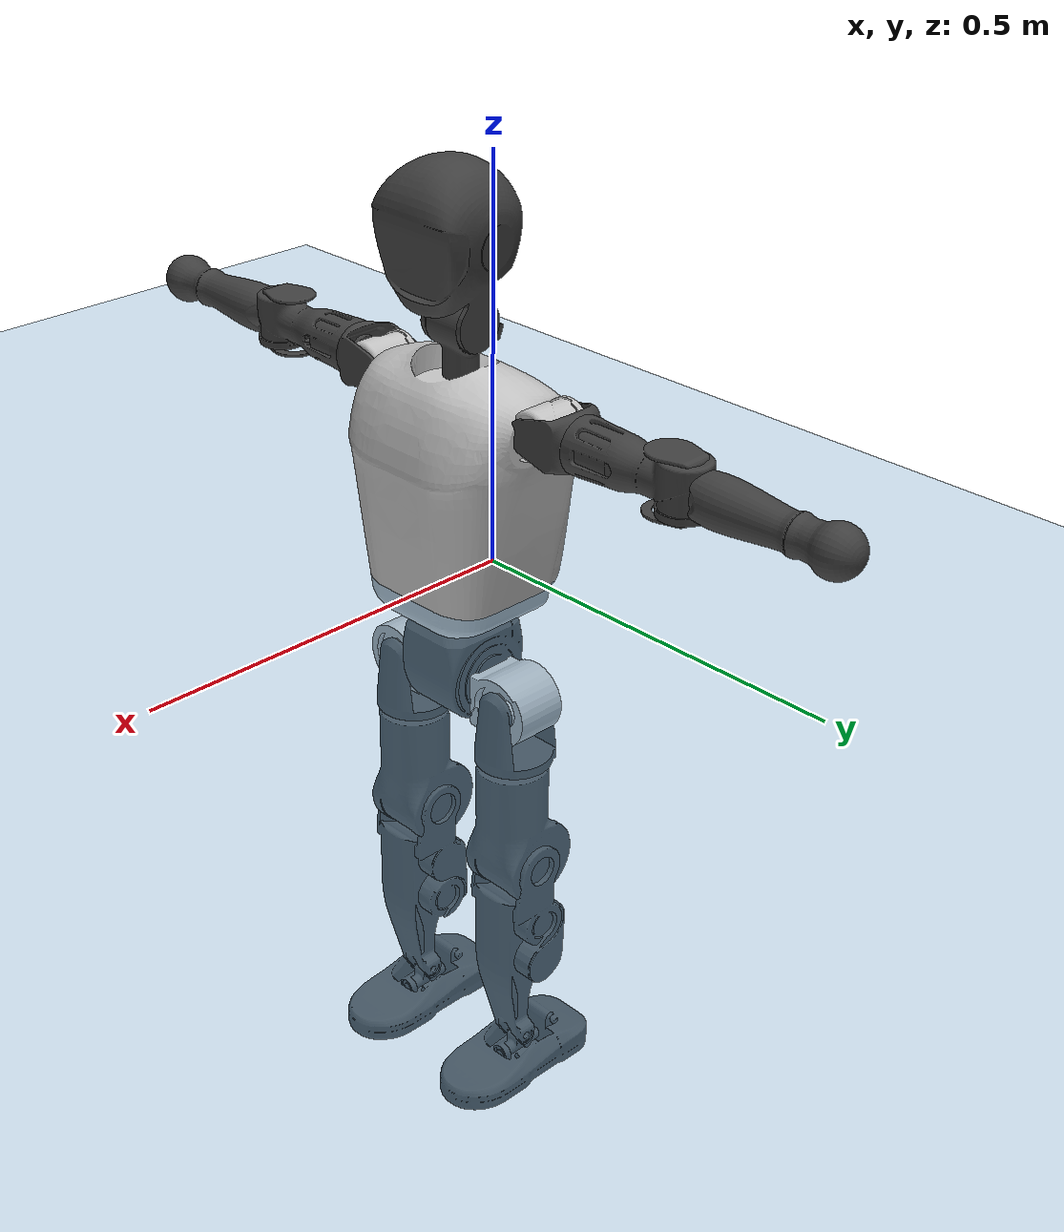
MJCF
<mujoco model="T1">
  <compiler angle="radian" assetdir="assets" balanceinertia="true" inertiafromgeom="false"/>

  <option timestep="0.005" density="1.2" viscosity="2e-05"/>

  <size nkey="1"/>

  <visual>
    <quality shadowsize="8192"/>
    <map shadowclip="0.5"/>
  </visual>

  <default>
    <default class="/">
      <joint armature="0.01" damping="0.01" frictionloss="0.1"/>
      <geom contype="0" conaffinity="0" group="1" solref="-1000 -80"/>
      <site size="0.01 0.005 0.005" group="5"/>
      <general forcelimited="true" biastype="affine" gainprm="25" biasprm="0 -25 -0.6"/>
      <default class="t1">
        <geom rgba="0.25 0.25 0.25 1"/>
        <default class="visual">
          <geom type="mesh" group="2"/>
        </default>
        <default class="collision">
          <geom group="3"/>
        </default>
        <default class="foot">
          <geom size="0.1115 0.05 0.015" type="box" condim="6" group="4" priority="1" solimp="0.015 1 0.015"/>
        </default>
        <default class="reward_collision_sphere">
          <geom group="5" rgba="1 0 0 1"/>
        </default>
      </default>
    </default>
  </default>

  <asset>
    <texture type="skybox" colorspace="auto" name="//unnamed_texture_0" builtin="gradient" rgb1="0.95 0.95 0.95" rgb2="0.95 0.95 0.95" width="100" height="600"/>
    <texture type="2d" colorspace="auto" name="texplane" builtin="checker" rgb1="0.345 0.575 0.748" rgb2="0.345 0.575 0.748" markrgb="1 1 1" width="512" height="512"/>
    <material name="MatPlane" class="/" texture="texplane" texuniform="true" texrepeat="2 2" specular="0.9"/>
    <mesh name="Trunk" class="/" file="Trunk.stl"/>
    <mesh name="H1" class="/" file="H1.stl"/>
    <mesh name="H2" class="/" file="H2.stl"/>
    <mesh name="AL1" class="/" file="AL1.stl"/>
    <mesh name="AL2" class="/" file="AL2.stl"/>
    <mesh name="AL3" class="/" file="AL3.stl"/>
    <mesh name="left_hand_link" class="/" file="left_hand_link.stl"/>
    <mesh name="AR1" class="/" file="AR1.stl"/>
    <mesh name="AR2" class="/" file="AR2.stl"/>
    <mesh name="AR3" class="/" file="AR3.stl"/>
    <mesh name="right_hand_link" class="/" file="right_hand_link.stl"/>
    <mesh name="Waist" class="/" file="Waist.stl"/>
    <mesh name="Hip_Pitch_Left" class="/" file="Hip_Pitch_Left.stl"/>
    <mesh name="Hip_Roll_Left" class="/" file="Hip_Roll_Left.stl"/>
    <mesh name="Hip_Yaw_Left" class="/" file="Hip_Yaw_Left.stl"/>
    <mesh name="Shank_Left" class="/" file="Shank_Left.stl"/>
    <mesh name="Ankle_Cross_Left" class="/" file="Ankle_Cross_Left.stl"/>
    <mesh name="left_foot_link" class="/" file="left_foot_link.stl"/>
    <mesh name="Hip_Pitch_Right" class="/" file="Hip_Pitch_Right.stl"/>
    <mesh name="Hip_Roll_Right" class="/" file="Hip_Roll_Right.stl"/>
    <mesh name="Hip_Yaw_Right" class="/" file="Hip_Yaw_Right.stl"/>
    <mesh name="Shank_Right" class="/" file="Shank_Right.stl"/>
    <mesh name="Ankle_Cross_Right" class="/" file="Ankle_Cross_Right.stl"/>
    <mesh name="right_foot_link" class="/" file="right_foot_link.stl"/>
  </asset>

  <worldbody>
    <geom name="floor" class="/" size="100 100 0.125" type="plane" group="0" material="MatPlane"/>
    <light name="toplight_shadow" class="/" pos="0 0 5" dir="0.0990148 0.0990148 -0.990148" type="directional" ambient="0.04 0.04 0.04" diffuse="0.55 0.55 0.55" specular="0.12 0.12 0.12"/>
    <light name="toplight_fill" class="/" pos="0 0 5" dir="0.0990148 0.0990148 -0.990148" type="directional" castshadow="false" ambient="0.04 0.04 0.04" diffuse="0.3 0.3 0.3" specular="0.08 0.08 0.08"/>
    <body name="trunk" childclass="t1" pos="0.000982747 -0.000385258 -0.000848386" quat="1 0.000245074 0.000141556 0.000214133">
      <inertial pos="0.0429453 0.00034203 0.109315" quat="0.999942 0.000118347 -0.0107978 -0.000183233" mass="8.29357" diaginertia="0.0280482 0.0359515 0.069675"/>
      <joint name="//unnamed_joint_0" type="free" armature="0" damping="0" frictionloss="0"/>
      <geom name="//unnamed_geom_1" class="visual" rgba="0.76 0.76 0.76 1" mesh="Trunk"/>
      <geom name="//unnamed_geom_2" class="collision" size="0.0674368 0.0899157 0.134874" pos="0.0474232 0 0.125874" type="box"/>
      <geom name="//unnamed_geom_3" class="reward_collision_sphere" size="0.103403" pos="0.0474232 0 0.104895"/>
      <geom name="//unnamed_geom_4" class="reward_collision_sphere" size="0.0134874" pos="0.0474232 0.0729412 0"/>
      <geom name="//unnamed_geom_5" class="reward_collision_sphere" size="0.0134874" pos="0.0474232 -0.0729412 0"/>
      <geom name="//unnamed_geom_6" class="reward_collision_sphere" size="0.0134874" pos="0.0474232 0.0918201 0.188811"/>
      <geom name="//unnamed_geom_7" class="reward_collision_sphere" size="0.0134874" pos="0.0474232 -0.0918201 0.188811"/>
      <site name="imu" pos="0.00253861 -0.00519519 -0.000790465" size="0.00899157"/>
      <camera name="track" pos="0 -1.71626 0" quat="0.707107 0.707107 0 0" mode="trackcom"/>
      <camera name="ego_camera" pos="0.0964272 0 0.44056" quat="-0.5 -0.5 0.5 0.5"/>
      <body name="H1" pos="0.048538 -0.000745808 0.254034" quat="1 -0.00045715 -0.000125023 2.42303e-05">
        <inertial pos="-0.00205632 -0.00154276 0.0595552" quat="0.768073 -0.0103866 0.00788941 0.640229" mass="0.321476" diaginertia="7.47654e-05 0.000103645 0.000191901"/>
        <joint name="AAHead_yaw" pos="0 0 0" axis="-0.00505624 -0.0016739 0.999986" stiffness="0.00189107" range="-1.56138 1.57883" armature="0.00864249" damping="0.00806884" frictionloss="0.0905752"/>
        <geom name="//unnamed_geom_8" class="visual" mesh="H1"/>
        <body name="H2" pos="-8.01717e-05 -0.000545252 0.0641816" quat="1 -0.000155893 -0.000182956 -0.000151585">
          <inertial pos="0.00559764 -0.000945573 0.103297" quat="0.988394 0.106563 -0.0750363 -0.0780409" mass="0.457789" diaginertia="0.000626413 0.000872301 0.00219046"/>
          <joint name="Head_pitch" pos="0 0 0" axis="0.0016857 -0.999998 -0.00103516" range="-1.22927 0.332633" armature="0.00910104" damping="0.00439731" frictionloss="0.0941024"/>
          <geom name="//unnamed_geom_9" class="visual" mesh="H2"/>
          <geom name="//unnamed_geom_10" class="collision" size="0.0719325" pos="0.00790387 0 0.115385"/>
          <geom name="//unnamed_geom_11" class="reward_collision_sphere" size="0.0809241" pos="0.0158077 0 0.104895"/>
        </body>
      </body>
      <body name="AL1" pos="0.0471422 0.0925317 0.23001" quat="1 0.000102354 0.000565761 -0.000106398">
        <inertial pos="-0.000172928 0.0380371 -0.00166716" quat="0.504306 0.490313 -0.507849 0.497351" mass="0.395347" diaginertia="0.000433965 0.000614142 0.000379485"/>
        <joint name="Left_Shoulder_Pitch" pos="0 0 0" axis="0.00581237 0.99998 0.00267645" range="-3.30592 1.23919" armature="0.00914176" damping="0.0053006" frictionloss="0.092172"/>
        <geom name="//unnamed_geom_12" class="visual" rgba="0.76 0.76 0.76 1" mesh="AL1"/>
        <body name="AL2" pos="6.31463e-05 0.0408925 -0.000252528" quat="1 -0.00087503 -0.000296604 -0.000175297">
          <inertial pos="0.00343175 0.0305594 -0.000404129" quat="0.487872 0.511672 -0.488075 0.511816" mass="0.115909" diaginertia="0.000124359 0.000162292 0.000223386"/>
          <joint name="Left_Shoulder_Roll" pos="0 0 0" axis="-0.999978 0.000410573 0.00663689" range="-1.54907 1.74882" armature="0.00945433" damping="0" frictionloss="0.0948788"/>
          <geom name="//unnamed_geom_13" class="visual" mesh="AL2"/>
          <body name="AL3" pos="0.000843285 0.0541687 -0.00034114" quat="1 0.000404756 -0.00032573 0.000222635">
            <inertial pos="-0.00049255 0.0725978 0.000714061" quat="0.706805 0.707399 0.00261084 -0.00270992" mass="0.768315" diaginertia="0.0039975 0.00607898 0.000779928"/>
            <joint name="Left_Elbow_Pitch" pos="0 0 0" axis="-0.000729984 -0.999999 -0.00105893" range="-2.23468 2.23561" armature="0.00958297" damping="0.000120957" frictionloss="0.090404"/>
            <geom name="//unnamed_geom_14" class="visual" mesh="AL3"/>
            <geom name="//unnamed_geom_15" class="collision" size="0.0269747 0.0674368" pos="0 0.0429066 0" quat="0.707105 0.707108 0 0" type="cylinder"/>
            <geom name="//unnamed_geom_16" class="reward_collision_sphere" size="0.0323696"/>
            <body name="left_hand_link" pos="-0.000276102 0.126285 -0.000603924" quat="1 -0.000166075 -0.000110098 3.34344e-05">
              <inertial pos="2.39067e-05 0.0936576 2.96539e-05" quat="0.708852 0.705353 -0.00229118 -0.000435229" mass="0.235754" diaginertia="0.00248908 0.0037678 0.00027304"/>
              <joint name="Left_Elbow_Yaw" pos="0 0 0" axis="2.59084e-05 0.000517101 1" range="-2.44451 -0.00530501" armature="0.0093007" damping="0.0106469" frictionloss="0.0866977"/>
              <geom name="//unnamed_geom_17" class="visual" mesh="left_hand_link"/>
              <geom name="//unnamed_geom_18" class="collision" size="0.0269747 0.0786762" pos="0 0.111557 0" quat="0.707105 0.707108 0 0" type="cylinder"/>
              <geom name="//unnamed_geom_19" class="reward_collision_sphere" size="0.0449578"/>
              <geom name="//unnamed_geom_20" class="reward_collision_sphere" size="0.0314705" pos="0 0.0943945 0"/>
              <geom name="//unnamed_geom_21" class="reward_collision_sphere" size="0.0314705" pos="0 0.184498 0"/>
            </body>
          </body>
        </body>
      </body>
      <body name="AR1" pos="0.0447978 -0.0917409 0.229482" quat="1 -1.97016e-05 0.000661375 -0.000152727">
        <inertial pos="-0.00126284 -0.0399705 0.00115674" quat="0.504387 0.49587 -0.503432 0.496249" mass="0.384745" diaginertia="0.000420321 0.00059776 0.000372186"/>
        <joint name="Right_Shoulder_Pitch" pos="0 0 0" axis="-4.0104e-05 -1 7.62783e-05" range="-1.21581 3.31034" armature="0.00931042" damping="0.00250726" frictionloss="0.0899419"/>
        <geom name="//unnamed_geom_22" class="visual" rgba="0.76 0.76 0.76 1" mesh="AR1"/>
        <body name="AR2" pos="-0.00095278 -0.0389783 0.000648378" quat="1 -9.91125e-06 1.58277e-05 1.47974e-05">
          <inertial pos="0.00254587 -0.0324941 -0.00101065" quat="0.514375 0.489111 -0.509849 0.486048" mass="0.114305" diaginertia="0.000123335 0.000156813 0.000220716"/>
          <joint name="Right_Shoulder_Roll" pos="0 0 0" axis="-0.999973 -0.00604261 0.00406314" stiffness="0.0052591" range="-1.72891 1.59189" armature="0.0090201" damping="0.00163028" frictionloss="0.0896056"/>
          <geom name="//unnamed_geom_23" class="visual" mesh="AR2"/>
          <body name="AR3" pos="-0.00051442 -0.052698 0.000811125" quat="1 -6.36168e-05 5.07305e-05 -0.000268745">
            <inertial pos="-0.00132405 -0.07248 -0.000399442" quat="0.708179 0.706033 -9.86063e-06 0.000386823" mass="0.736073" diaginertia="0.00391738 0.00588311 0.000772325"/>
            <joint name="Right_Elbow_Pitch" pos="0 0 0" axis="-0.00485786 0.999987 0.00145507" range="-2.27593 2.27018" armature="0.0095781" damping="0.00825067" frictionloss="0.0845899"/>
            <geom name="//unnamed_geom_24" class="visual" mesh="AR3"/>
            <geom name="//unnamed_geom_25" class="collision" size="0.0269747 0.0674368" pos="0 -0.0429066 0" quat="0.707105 0.707108 0 0" type="cylinder"/>
            <geom name="//unnamed_geom_26" class="reward_collision_sphere" size="0.0323696"/>
            <body name="right_hand_link" pos="-0.000815692 -0.125656 -0.000402789" quat="1 5.27902e-05 9.77704e-05 8.28863e-06">
              <inertial pos="-0.000427087 -0.0941478 -0.000840994" quat="0.70248 0.711678 -0.00520869 -0.00303513" mass="0.244057" diaginertia="0.00248047 0.0037869 0.000270805"/>
              <joint name="Right_Elbow_Yaw" pos="0 0 0" axis="0.00242641 0.00354983 0.999991" range="-0.0254114 2.47165" armature="0.00881934" damping="0.0116253" frictionloss="0.087549"/>
              <geom name="//unnamed_geom_27" class="visual" mesh="right_hand_link"/>
              <geom name="//unnamed_geom_28" class="collision" size="0.0269747 0.0786762" pos="0 -0.111557 0" quat="0.707105 0.707108 0 0" type="cylinder"/>
              <geom name="//unnamed_geom_29" class="reward_collision_sphere" size="0.0449578"/>
              <geom name="//unnamed_geom_30" class="reward_collision_sphere" size="0.0314705" pos="0 -0.0943945 0"/>
              <geom name="//unnamed_geom_31" class="reward_collision_sphere" size="0.0314705" pos="0 -0.184498 0"/>
            </body>
          </body>
        </body>
      </body>
      <body name="Waist" pos="0.0485809 -0.00117247 -0.120527" quat="1 -0.000455183 1.86656e-05 -6.32474e-05">
        <inertial pos="0.00118885 -0.00103188 0.00688818" quat="0.983718 -0.00229245 -0.179704 -0.000662273" mass="1.88742" diaginertia="0.00164583 0.00245025 0.00600284"/>
        <joint name="Waist" pos="0 0 0" axis="-0.00477927 0.000495229 0.999988" range="-1.57068 1.56442" armature="0.00855076" damping="0.0165808" frictionloss="0.0868822"/>
        <geom name="//unnamed_geom_32" class="visual" mesh="Waist"/>
        <body name="Hip_Pitch_Left" pos="0.00016714 0.0918147 0.00107698" quat="1 0.000147765 -0.000169312 0.000108666">
          <inertial pos="0.00244201 -0.00746114 -0.0203339" quat="0.975525 0.219708 0.00719304 0.00515128" mass="0.740075" diaginertia="0.000557912 0.000677326 0.00157329"/>
          <joint name="Left_Hip_Pitch" pos="0 0 0" axis="-0.00317112 0.999994 -0.00128831" stiffness="0.000435535" range="-1.80338 1.59443" armature="0.00878753" damping="0.00168086" frictionloss="0.0886227"/>
          <geom name="//unnamed_geom_33" class="visual" rgba="0.76 0.76 0.76 1" mesh="Hip_Pitch_Left"/>
          <body name="Hip_Roll_Left" pos="0.000860879 -0.000696956 -0.0201709" quat="1 0.000126103 -9.38386e-05 0.000189841">
            <inertial pos="0.00154908 0.000571162 -0.0561225" quat="0.706702 -0.00564593 -0.00608873 0.707462" mass="0.270381" diaginertia="0.000534881 0.000685688 0.000637714"/>
            <joint name="Left_Hip_Roll" pos="0 0 0" axis="-0.999981 -0.00190554 0.00583434" range="-1.56078 0.182365" armature="0.00905992" damping="0.0102026" frictionloss="0.0905504"/>
            <geom name="//unnamed_geom_34" class="visual" mesh="Hip_Roll_Left"/>
            <geom name="//unnamed_geom_35" class="reward_collision_sphere" size="0.0494536"/>
            <body name="Hip_Yaw_Left" pos="0.00169578 -0.000117925 -0.0863028" quat="1 -6.53859e-05 6.87323e-05 -8.6513e-05">
              <inertial pos="-0.00550149 -0.000438798 -0.094259" quat="0.700678 -0.0389777 -0.031688 0.711708" mass="1.58617" diaginertia="0.0080453 0.0119645 0.00336751"/>
              <joint name="Left_Hip_Yaw" pos="0 0 0" axis="0.00337852 0.000182623 -0.999994" range="-1.02546 1.00177" armature="0.00885682" damping="0.00506799" frictionloss="0.0884317"/>
              <geom name="//unnamed_geom_36" class="visual" mesh="Hip_Yaw_Left"/>
              <geom name="//unnamed_geom_37" class="collision" size="0.0449578 0.0719325" type="cylinder"/>
              <body name="Shank_Left" pos="-0.0105565 0.00109436 -0.141982" quat="1 -0.000175784 0.000258309 -8.78943e-05">
                <inertial pos="-0.00481475 -0.00109999 -0.130593" quat="0.997658 0.00325072 -0.0247374 0.0636838" mass="1.25552" diaginertia="0.0109332 0.016084 0.00240925"/>
                <joint name="Left_Knee_Pitch" pos="0 0 0" axis="-4.94673e-05 1 -0.000115646" range="-0.0191669 2.33721" armature="0.00865089" damping="0.00503873" frictionloss="0.0992396"/>
                <geom name="//unnamed_geom_38" class="visual" mesh="Shank_Left"/>
                <geom name="//unnamed_geom_39" class="collision" size="0.0449578 0.0674368" pos="0 0 -0.125874" type="cylinder"/>
                <geom name="//unnamed_geom_40" class="reward_collision_sphere" size="0.0584452"/>
                <body name="Ankle_Cross_Left" pos="-0.00110599 -0.000551712 -0.293768" quat="1 -1.56389e-05 -7.61147e-05 -2.08407e-06">
                  <inertial pos="-0.00282579 -1.92402e-05 -0.00911277" quat="0.442709 0.552103 0.55032 0.443101" mass="0.0519115" diaginertia="8.7545e-06 1.13903e-05 1.39519e-05"/>
                  <joint name="Left_Ankle_Pitch" pos="0 0 0" axis="0.00599991 0.999957 -0.00704789" range="-0.851343 0.355501" armature="0.00892469" damping="0.0101769" frictionloss="0.0942095"/>
                  <geom name="//unnamed_geom_41" class="visual" mesh="Ankle_Cross_Left"/>
                  <body name="left_foot_link" pos="-0.00106411 -0.000791927 -0.0124941" quat="1 -0.000212732 0.000210132 -0.000870948">
                    <inertial pos="0.00108433 -0.000251983 -0.00857442" quat="-0.00217302 0.620876 0.000888581 0.783905" mass="0.489405" diaginertia="0.000823874 0.00109741 0.00273692"/>
                    <joint name="Left_Ankle_Roll" pos="0 0 0" axis="-0.999999 -0.000886301 -0.000743902" stiffness="2.28737e-05" range="-0.439303 0.456494" armature="0.00902611" damping="0.00621319" frictionloss="0.0857749"/>
                    <geom name="//unnamed_geom_42" class="visual" mesh="left_foot_link"/>
                    <geom name="left_foot" class="foot" size="0.10375 0.044425 0.0127588" pos="0.00790387 0 -0.0157343"/>
                    <geom name="//unnamed_geom_44" class="reward_collision_sphere" size="0.0467561" pos="0.00790387 0 -0.0157343"/>
                    <geom name="//unnamed_geom_45" class="reward_collision_sphere" size="0.0269747" pos="0.0750867 -0.019737 -0.0157343"/>
                    <geom name="//unnamed_geom_46" class="reward_collision_sphere" size="0.0269747" pos="-0.0553271 -0.019737 -0.0157343"/>
                    <site name="left_foot" class="foot" pos="0.00790387 0 -0.0157343" size="0.00899157"/>
                  </body>
                </body>
              </body>
            </body>
          </body>
        </body>
        <body name="Hip_Pitch_Right" pos="-0.000818784 -0.0902613 0.000178219" quat="1 -6.5166e-05 -0.000111473 -0.000126569">
          <inertial pos="0.00117598 0.00714636 -0.0182048" quat="0.97342 -0.228479 0.0153772 -0.00371099" mass="0.746273" diaginertia="0.000558053 0.000680021 0.00157439"/>
          <joint name="Right_Hip_Pitch" pos="0 0 0" axis="-0.00250292 -0.999997 -0.000249404" stiffness="0.00110906" range="-1.57012 1.78916" armature="0.00884131" damping="0.00563477" frictionloss="0.0896426"/>
          <geom name="//unnamed_geom_47" class="visual" rgba="0.76 0.76 0.76 1" mesh="Hip_Pitch_Right"/>
          <body name="Hip_Roll_Right" pos="0.000583879 4.1646e-05 -0.0199948" quat="1 8.30857e-05 -1.51576e-05 -6.98318e-06">
            <inertial pos="0.000434875 0.00069121 -0.0565994" quat="0.705558 -0.00884743 -0.00331118 0.708589" mass="0.28341" diaginertia="0.000541926 0.000706775 0.000662942"/>
            <joint name="Right_Hip_Roll" pos="0 0 0" axis="-0.999999 0.00104541 -0.000291158" range="-0.189752 1.56786" armature="0.00857103" damping="0.00875602" frictionloss="0.0938292"/>
            <geom name="//unnamed_geom_48" class="visual" mesh="Hip_Roll_Right"/>
            <geom name="//unnamed_geom_49" class="reward_collision_sphere" size="0.0494536"/>
            <body name="Hip_Yaw_Right" pos="0.000732381 -0.00041952 -0.0863208" quat="1 -3.88594e-05 8.94209e-06 -0.000203319">
              <inertial pos="-0.00530045 -0.00129969 -0.0921609" quat="0.714568 -0.0308461 -0.034193 0.698049" mass="1.61007" diaginertia="0.00801782 0.0119875 0.00330662"/>
              <joint name="Right_Hip_Yaw" pos="0 0 0" axis="-0.00278922 0.00380047 -0.999989" stiffness="0.00527547" range="-1.00881 1.00884" armature="0.00823634" damping="0.00857061" frictionloss="0.0891278"/>
              <geom name="//unnamed_geom_50" class="visual" mesh="Hip_Yaw_Right"/>
              <geom name="//unnamed_geom_51" class="collision" size="0.0449578 0.0719325" type="cylinder"/>
              <body name="Shank_Right" pos="-0.00938619 -0.000727787 -0.139808" quat="1 5.14568e-05 0.000112714 9.47176e-05">
                <inertial pos="-0.00328251 0.00180862 -0.129473" quat="0.999257 -0.000582592 -0.0234982 -0.0305516" mass="1.32814" diaginertia="0.0113613 0.0168022 0.00257396"/>
                <joint name="Right_Knee_Pitch" pos="0 0 0" axis="0.000342271 -1 -0.000705565" range="-2.34208 0.00177433" armature="0.00879951" damping="0.0104741" frictionloss="0.0856529"/>
                <geom name="//unnamed_geom_52" class="visual" mesh="Shank_Right"/>
                <geom name="//unnamed_geom_53" class="collision" size="0.0449578 0.0674368" pos="0 0 -0.125874" type="cylinder"/>
                <geom name="//unnamed_geom_54" class="reward_collision_sphere" size="0.0584452"/>
                <body name="Ankle_Cross_Right" pos="-0.000230046 -0.0014733 -0.294004" quat="1 3.19493e-05 -5.73253e-05 -0.000143554">
                  <inertial pos="-0.00364108 -0.000386656 -0.00858785" quat="0.44156 0.552598 0.548403 0.445998" mass="0.0529892" diaginertia="8.9559e-06 1.19401e-05 1.45423e-05"/>
                  <joint name="Right_Ankle_Pitch" pos="0 0 0" axis="0.00805686 -0.999942 0.00712096" range="-0.332669 0.867296" armature="0.00900731" damping="0.00767522" frictionloss="0.0868822"/>
                  <geom name="//unnamed_geom_55" class="visual" mesh="Ankle_Cross_Right"/>
                  <body name="right_foot_link" pos="-3.06029e-05 -0.00146089 -0.0124377" quat="1 -1.0343e-05 -2.52399e-05 -4.74858e-06">
                    <inertial pos="0.00161892 5.49929e-05 -0.00997481" quat="0.000386277 0.620761 0.000760298 0.783999" mass="0.501293" diaginertia="0.000853779 0.00110861 0.00281384"/>
                    <joint name="Right_Ankle_Roll" pos="0 0 0" axis="-0.999987 0.00485583 0.00128327" range="-0.436551 0.45769" armature="0.00861588" damping="0.0061239" frictionloss="0.0837869"/>
                    <geom name="//unnamed_geom_56" class="visual" mesh="right_foot_link"/>
                    <geom name="right_foot" class="foot" size="0.0986984 0.0440969 0.013804" pos="0.00790387 0 -0.0157343"/>
                    <geom name="//unnamed_geom_58" class="reward_collision_sphere" size="0.0359663"/>
                    <geom name="//unnamed_geom_59" class="reward_collision_sphere" size="0.0269747" pos="0.00790387 0 -0.0157343"/>
                    <geom name="//unnamed_geom_60" class="reward_collision_sphere" size="0.0269747" pos="0.0750867 0.019737 -0.0157343"/>
                    <geom name="//unnamed_geom_61" class="reward_collision_sphere" size="0.0269747" pos="-0.0553271 0.019737 -0.0157343"/>
                    <site name="right_foot" class="foot" pos="0.00790387 0 -0.0157343" size="0.00899157"/>
                  </body>
                </body>
              </body>
            </body>
          </body>
        </body>
      </body>
    </body>
  </worldbody>

  <contact>
    <pair class="/" geom1="floor" geom2="left_foot" name="//unnamed_contact_0"/>
    <pair class="/" geom1="floor" geom2="right_foot" name="//unnamed_contact_1"/>
  </contact>

  <actuator>
    <general name="AAHead_yaw" class="/" joint="AAHead_yaw" forcerange="-6.07697 6.07697" gainprm="22.7716" biasprm="0 -22.7716 -0.528543"/>
    <general name="Head_pitch" class="/" joint="Head_pitch" forcerange="-6.07396 6.07396" gainprm="22.7716" biasprm="0 -22.7716 -0.528543"/>
    <general name="Left_Shoulder_Pitch" class="/" joint="Left_Shoulder_Pitch" forcerange="-15.9454 15.9454" gainprm="22.7716" biasprm="0 -22.7716 -0.528543"/>
    <general name="Left_Shoulder_Roll" class="/" joint="Left_Shoulder_Roll" forcerange="-15.5783 15.5783" gainprm="22.7716" biasprm="0 -22.7716 -0.528543"/>
    <general name="Left_Elbow_Pitch" class="/" joint="Left_Elbow_Pitch" forcerange="-16.4198 16.4198" gainprm="22.7716" biasprm="0 -22.7716 -0.528543"/>
    <general name="Left_Elbow_Yaw" class="/" joint="Left_Elbow_Yaw" forcerange="-17.398 17.398" gainprm="22.7716" biasprm="0 -22.7716 -0.528543"/>
    <general name="Right_Shoulder_Pitch" class="/" joint="Right_Shoulder_Pitch" forcerange="-16.2368 16.2368" gainprm="22.7716" biasprm="0 -22.7716 -0.528543"/>
    <general name="Right_Shoulder_Roll" class="/" joint="Right_Shoulder_Roll" forcerange="-16.3492 16.3492" gainprm="22.7716" biasprm="0 -22.7716 -0.528543"/>
    <general name="Right_Elbow_Pitch" class="/" joint="Right_Elbow_Pitch" forcerange="-15.8994 15.8994" gainprm="22.7716" biasprm="0 -22.7716 -0.528543"/>
    <general name="Right_Elbow_Yaw" class="/" joint="Right_Elbow_Yaw" forcerange="-15.9881 15.9881" gainprm="22.7716" biasprm="0 -22.7716 -0.528543"/>
    <general name="Waist" class="/" joint="Waist" forcerange="-27.0508 27.0508" gainprm="22.7716" biasprm="0 -22.7716 -0.528543"/>
    <general name="Left_Hip_Pitch" class="/" joint="Left_Hip_Pitch" forcerange="-39.4397 39.4397" gainprm="22.7716" biasprm="0 -22.7716 -0.528543"/>
    <general name="Left_Hip_Roll" class="/" joint="Left_Hip_Roll" forcerange="-26.4701 26.4701" gainprm="22.7716" biasprm="0 -22.7716 -0.528543"/>
    <general name="Left_Hip_Yaw" class="/" joint="Left_Hip_Yaw" forcerange="-26.2365 26.2365" gainprm="22.7716" biasprm="0 -22.7716 -0.528543"/>
    <general name="Left_Knee_Pitch" class="/" joint="Left_Knee_Pitch" forcerange="-53.6861 53.6861" gainprm="22.7716" biasprm="0 -22.7716 -0.528543"/>
    <general name="Left_Ankle_Pitch" class="/" joint="Left_Ankle_Pitch" forcerange="-17.6715 17.6715" gainprm="22.7716" biasprm="0 -22.7716 -0.528543"/>
    <general name="Left_Ankle_Roll" class="/" joint="Left_Ankle_Roll" forcerange="-13.4946 13.4946" gainprm="22.7716" biasprm="0 -22.7716 -0.528543"/>
    <general name="Right_Hip_Pitch" class="/" joint="Right_Hip_Pitch" forcerange="-40.2561 40.2561" gainprm="22.7716" biasprm="0 -22.7716 -0.528543"/>
    <general name="Right_Hip_Roll" class="/" joint="Right_Hip_Roll" forcerange="-26.8207 26.8207" gainprm="22.7716" biasprm="0 -22.7716 -0.528543"/>
    <general name="Right_Hip_Yaw" class="/" joint="Right_Hip_Yaw" forcerange="-26.9523 26.9523" gainprm="22.7716" biasprm="0 -22.7716 -0.528543"/>
    <general name="Right_Knee_Pitch" class="/" joint="Right_Knee_Pitch" forcerange="-55.6766 55.6766" gainprm="22.7716" biasprm="0 -22.7716 -0.528543"/>
    <general name="Right_Ankle_Pitch" class="/" joint="Right_Ankle_Pitch" forcerange="-17.8719 17.8719" gainprm="22.7716" biasprm="0 -22.7716 -0.528543"/>
    <general name="Right_Ankle_Roll" class="/" joint="Right_Ankle_Roll" forcerange="-13.1675 13.1675" gainprm="22.7716" biasprm="0 -22.7716 -0.528543"/>
  </actuator>

  <sensor>
    <gyro site="imu" name="imu_angular_velocity"/>
    <velocimeter site="imu" name="imu_linear_velocity"/>
    <framelinvel objtype="site" objname="left_foot" name="left_foot_global_linear_velocity"/>
    <framelinvel objtype="site" objname="right_foot" name="right_foot_global_linear_velocity"/>
  </sensor>

  <keyframe>
    <key name="home" qpos="0 0 0.6385 1 0 0 0 0 0 0 1.4 0 -0.4 0 -1.4 0 0.4 0 -0.4 0 0 0.8 -0.4 0 0.4 0 0 -0.8 0.4 0"/>
  </keyframe>
</mujoco>
